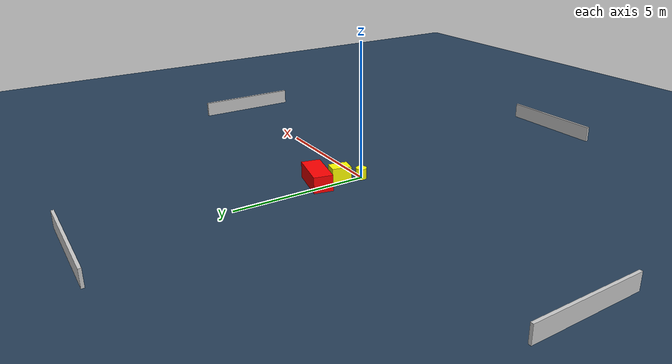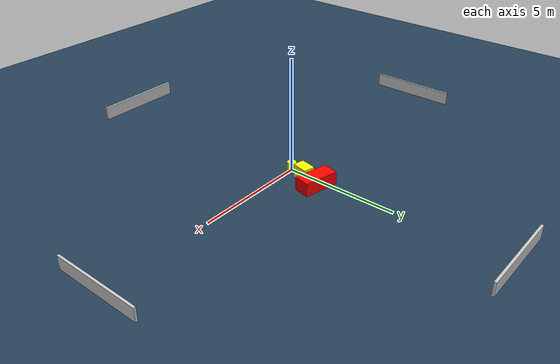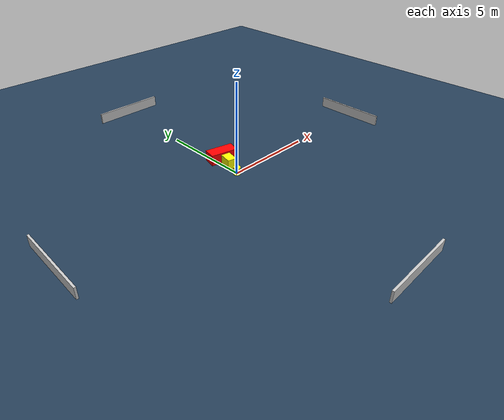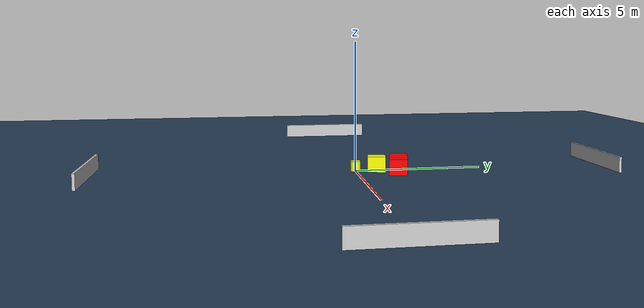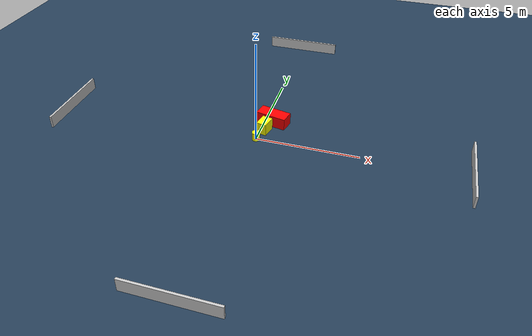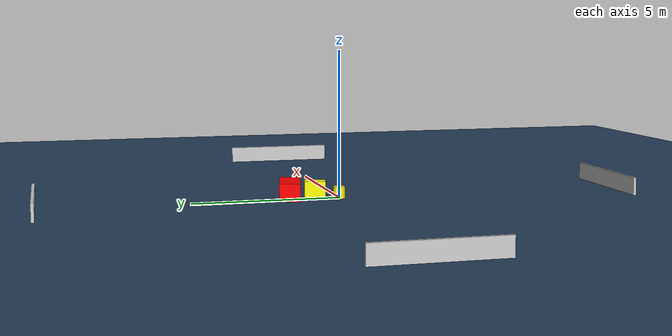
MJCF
<?xml version="1.0" ?>
<mujoco model="generated_environment">
  <option timestep="0.01" integrator="RK4" cone="elliptic"/>
  <default>
    <geom density="1"/>
  </default>
  <asset>
    <texture builtin="gradient" height="3072" name="skybox" rgb1="0.3 0.5 0.7" rgb2="0 0 0" type="skybox" width="512"/>
    <texture builtin="checker" height="300" name="groundplane" rgb1="0.2 0.3 0.4" rgb2="0.1 0.2 0.3" type="2d" width="300"/>
    <material name="groundplane" reflectance="0.2" texrepeat="5 5" texture="groundplane"/>
  </asset>
  <worldbody>
    <light dir="0 0 -1" directional="true" pos="0 0 1.5"/>
    <geom condim="3" friction="0.5 0.005 0.001" material="groundplane" name="floor" pos="0 0 0" size="0 0 0.05" type="plane"/>
    <body name="walls">
      <geom name="wall_1" condim="4" pos="-10.0 0.0 0.3" rgba="0.800000011920929 0.800000011920929 0.800000011920929 1.0" size="0.05 2.0 0.3" type="box"/>
      <geom name="wall_2" condim="4" pos="10.0 0.0 0.3" rgba="0.800000011920929 0.800000011920929 0.800000011920929 1.0" size="0.05 2.0 0.3" type="box"/>
      <geom name="wall_3" condim="4" pos="0.0 -10.0 0.3" rgba="0.800000011920929 0.800000011920929 0.800000011920929 1.0" size="2.0 0.05 0.3" type="box"/>
      <geom name="wall_4" condim="4" pos="0.0 10.0 0.3" rgba="0.800000011920929 0.800000011920929 0.800000011920929 1.0" size="2.0 0.05 0.3" type="box"/>
    </body>
    <body name="robot">
      <joint name="joint_x" type="slide" pos="0 0 0" axis="1 0 0"/>
      <joint name="joint_y" type="slide" pos="0 0 0" axis="0 1 0"/>
      <geom name="robot" type="cylinder" pos="0.0 0.0 0.2" size="0.2 0.2 0.0" mass="5.0" friction="1.0 0.005 0.0001" condim="4" rgba="1.0 1.0 0.0 1.0"/>
    </body>
    <body name="obstacle_1_movable">
      <geom name="obstacle_1_movable" condim="4" pos="0.18983750348854403 0.8012545118115226 0.3" euler="0 0 168.05239286862874" friction="0.0 0.005 0.001" rgba="1.0 1.0 0.0 1.0" size="0.25206449289338617 0.3533575276020898 0.3" type="box" mass="0.1"/>
      <joint type="free"/>
    </body>
    <body name="obstacle_2_static">
      <geom name="obstacle_2_static" condim="4" pos="0.4138092615094037 1.610549435098334 0.3" euler="0 0 77.42350161451846" friction="0.0 0.005 0.001" rgba="1.0 0.0 0.0 1.0" size="0.3505710150465857 0.7756428133246811 0.3" type="box"/>
    </body>
  </worldbody>
  <actuator>
    <motor name="actuator_x" joint="joint_x" gear="1" ctrlrange="-1 1"/>
    <motor name="actuator_y" joint="joint_y" gear="1" ctrlrange="-1 1"/>
  </actuator>
</mujoco>
